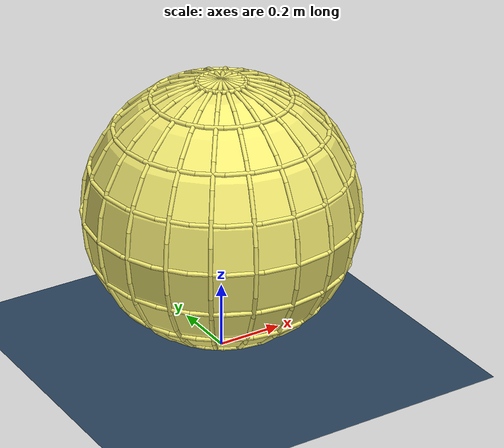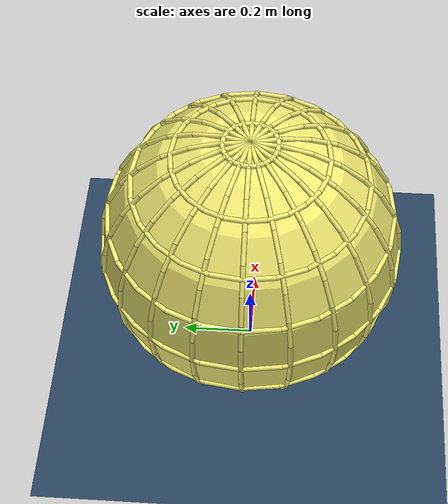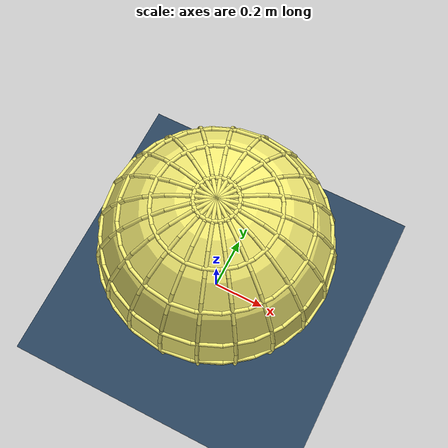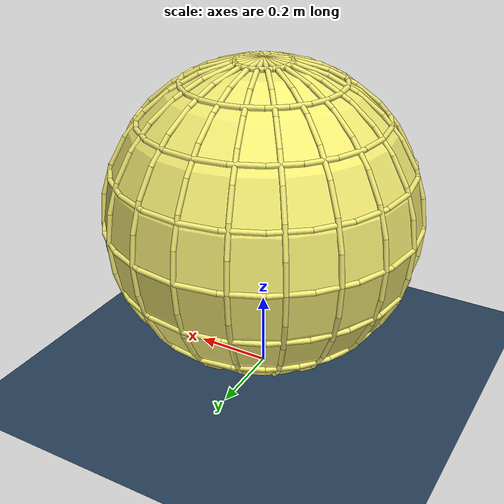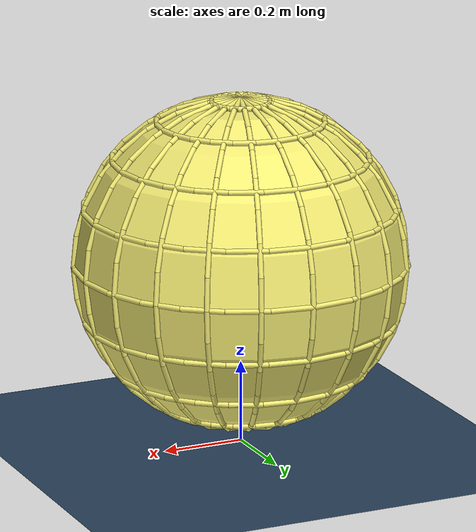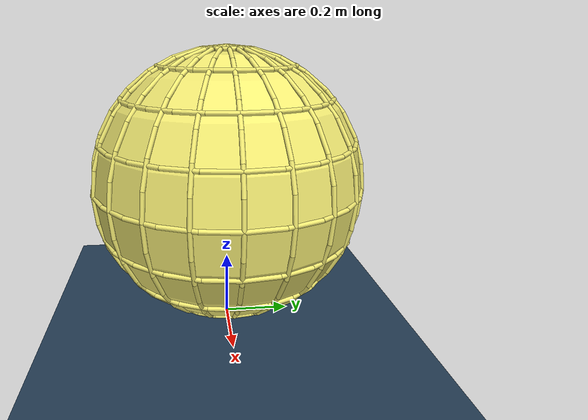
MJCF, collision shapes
<mujoco model="Skydio X2 ribbed cage scene">
  <include file="x2.xml"/>

  <statistic center="0 0 0.1" extent="0.6" meansize=".05"/>

  <visual>
    <headlight diffuse="0.8 0.8 0.8" ambient="0.3 0.3 0.3" specular="0 0 0"/>
    <rgba haze="0.15 0.25 0.35 1"/>
    <global azimuth="-20" elevation="-20" ellipsoidinertia="true"/>
  </visual>

  <asset>
    <texture type="skybox" builtin="gradient" rgb1="0.3 0.5 0.7" rgb2="0 0 0" width="512" height="3072"/>
    <texture type="2d" name="groundplane" builtin="checker" mark="edge" rgb1="0.2 0.3 0.4" rgb2="0.1 0.2 0.3"
      markrgb="0.8 0.8 0.8" width="300" height="300"/>
    <material name="groundplane" texture="groundplane" texuniform="true" texrepeat="5 5" reflectance="0.2"/>
  </asset>

  <worldbody>
    <light pos="0 0 1.5" dir="0 0 -1" directional="true"/>
    <geom name="floor" size="0 0 0.05" type="plane" material="groundplane"/>
  </worldbody>
</mujoco>

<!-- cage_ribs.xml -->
<mujoco>
  <body name="cage_ribs">
    <geom class="cage_rib" fromto="0.00000 0.00000 0.40000   0.07804 0.00000 0.39231" />
    <geom class="cage_rib" fromto="0.07804 0.00000 0.39231   0.15307 0.00000 0.36955" />
    <geom class="cage_rib" fromto="0.15307 0.00000 0.36955   0.22223 0.00000 0.33259" />
    <geom class="cage_rib" fromto="0.22223 0.00000 0.33259   0.28284 0.00000 0.28284" />
    <geom class="cage_rib" fromto="0.28284 0.00000 0.28284   0.33259 0.00000 0.22223" />
    <geom class="cage_rib" fromto="0.33259 0.00000 0.22223   0.36955 0.00000 0.15307" />
    <geom class="cage_rib" fromto="0.36955 0.00000 0.15307   0.39231 0.00000 0.07804" />
    <geom class="cage_rib" fromto="0.39231 0.00000 0.07804   0.40000 0.00000 0.00000" />
    <geom class="cage_rib" fromto="0.40000 0.00000 0.00000   0.39231 0.00000 -0.07804" />
    <geom class="cage_rib" fromto="0.39231 0.00000 -0.07804   0.36955 0.00000 -0.15307" />
    <geom class="cage_rib" fromto="0.36955 0.00000 -0.15307   0.33259 0.00000 -0.22223" />
    <geom class="cage_rib" fromto="0.33259 0.00000 -0.22223   0.28284 0.00000 -0.28284" />
    <geom class="cage_rib" fromto="0.28284 0.00000 -0.28284   0.22223 0.00000 -0.33259" />
    <geom class="cage_rib" fromto="0.22223 0.00000 -0.33259   0.15307 0.00000 -0.36955" />
    <geom class="cage_rib" fromto="0.15307 0.00000 -0.36955   0.07804 0.00000 -0.39231" />
    <geom class="cage_rib" fromto="0.07804 0.00000 -0.39231   0.00000 0.00000 -0.40000" />
    <geom class="cage_rib" fromto="0.00000 0.00000 -0.40000   -0.07804 -0.00000 -0.39231" />
    <geom class="cage_rib" fromto="-0.07804 -0.00000 -0.39231   -0.15307 -0.00000 -0.36955" />
    <geom class="cage_rib" fromto="-0.15307 -0.00000 -0.36955   -0.22223 -0.00000 -0.33259" />
    <geom class="cage_rib" fromto="-0.22223 -0.00000 -0.33259   -0.28284 -0.00000 -0.28284" />
    <geom class="cage_rib" fromto="-0.28284 -0.00000 -0.28284   -0.33259 -0.00000 -0.22223" />
    <geom class="cage_rib" fromto="-0.33259 -0.00000 -0.22223   -0.36955 -0.00000 -0.15307" />
    <geom class="cage_rib" fromto="-0.36955 -0.00000 -0.15307   -0.39231 -0.00000 -0.07804" />
    <geom class="cage_rib" fromto="-0.39231 -0.00000 -0.07804   -0.40000 -0.00000 -0.00000" />
    <geom class="cage_rib" fromto="-0.40000 -0.00000 -0.00000   -0.39231 -0.00000 0.07804" />
    <geom class="cage_rib" fromto="-0.39231 -0.00000 0.07804   -0.36955 -0.00000 0.15307" />
    <geom class="cage_rib" fromto="-0.36955 -0.00000 0.15307   -0.33259 -0.00000 0.22223" />
    <geom class="cage_rib" fromto="-0.33259 -0.00000 0.22223   -0.28284 -0.00000 0.28284" />
    <geom class="cage_rib" fromto="-0.28284 -0.00000 0.28284   -0.22223 -0.00000 0.33259" />
    <geom class="cage_rib" fromto="-0.22223 -0.00000 0.33259   -0.15307 -0.00000 0.36955" />
    <geom class="cage_rib" fromto="-0.15307 -0.00000 0.36955   -0.07804 -0.00000 0.39231" />
    <geom class="cage_rib" fromto="-0.07804 -0.00000 0.39231   0.00000 0.00000 0.40000" />
    <geom class="cage_rib" fromto="0.00000 0.00000 0.40000   0.07422 0.02411 0.39231" />
    <geom class="cage_rib" fromto="0.07422 0.02411 0.39231   0.14558 0.04730 0.36955" />
    <geom class="cage_rib" fromto="0.14558 0.04730 0.36955   0.21135 0.06867 0.33259" />
    <geom class="cage_rib" fromto="0.21135 0.06867 0.33259   0.26900 0.08740 0.28284" />
    <geom class="cage_rib" fromto="0.26900 0.08740 0.28284   0.31631 0.10278 0.22223" />
    <geom class="cage_rib" fromto="0.31631 0.10278 0.22223   0.35146 0.11420 0.15307" />
    <geom class="cage_rib" fromto="0.35146 0.11420 0.15307   0.37311 0.12123 0.07804" />
    <geom class="cage_rib" fromto="0.37311 0.12123 0.07804   0.38042 0.12361 0.00000" />
    <geom class="cage_rib" fromto="0.38042 0.12361 0.00000   0.37311 0.12123 -0.07804" />
    <geom class="cage_rib" fromto="0.37311 0.12123 -0.07804   0.35146 0.11420 -0.15307" />
    <geom class="cage_rib" fromto="0.35146 0.11420 -0.15307   0.31631 0.10278 -0.22223" />
    <geom class="cage_rib" fromto="0.31631 0.10278 -0.22223   0.26900 0.08740 -0.28284" />
    <geom class="cage_rib" fromto="0.26900 0.08740 -0.28284   0.21135 0.06867 -0.33259" />
    <geom class="cage_rib" fromto="0.21135 0.06867 -0.33259   0.14558 0.04730 -0.36955" />
    <geom class="cage_rib" fromto="0.14558 0.04730 -0.36955   0.07422 0.02411 -0.39231" />
    <geom class="cage_rib" fromto="0.07422 0.02411 -0.39231   0.00000 0.00000 -0.40000" />
    <geom class="cage_rib" fromto="0.00000 0.00000 -0.40000   -0.07422 -0.02411 -0.39231" />
    <geom class="cage_rib" fromto="-0.07422 -0.02411 -0.39231   -0.14558 -0.04730 -0.36955" />
    <geom class="cage_rib" fromto="-0.14558 -0.04730 -0.36955   -0.21135 -0.06867 -0.33259" />
    <geom class="cage_rib" fromto="-0.21135 -0.06867 -0.33259   -0.26900 -0.08740 -0.28284" />
    <geom class="cage_rib" fromto="-0.26900 -0.08740 -0.28284   -0.31631 -0.10278 -0.22223" />
    <geom class="cage_rib" fromto="-0.31631 -0.10278 -0.22223   -0.35146 -0.11420 -0.15307" />
    <geom class="cage_rib" fromto="-0.35146 -0.11420 -0.15307   -0.37311 -0.12123 -0.07804" />
    <geom class="cage_rib" fromto="-0.37311 -0.12123 -0.07804   -0.38042 -0.12361 -0.00000" />
    <geom class="cage_rib" fromto="-0.38042 -0.12361 -0.00000   -0.37311 -0.12123 0.07804" />
    <geom class="cage_rib" fromto="-0.37311 -0.12123 0.07804   -0.35146 -0.11420 0.15307" />
    <geom class="cage_rib" fromto="-0.35146 -0.11420 0.15307   -0.31631 -0.10278 0.22223" />
    <geom class="cage_rib" fromto="-0.31631 -0.10278 0.22223   -0.26900 -0.08740 0.28284" />
    <geom class="cage_rib" fromto="-0.26900 -0.08740 0.28284   -0.21135 -0.06867 0.33259" />
    <geom class="cage_rib" fromto="-0.21135 -0.06867 0.33259   -0.14558 -0.04730 0.36955" />
    <geom class="cage_rib" fromto="-0.14558 -0.04730 0.36955   -0.07422 -0.02411 0.39231" />
    <geom class="cage_rib" fromto="-0.07422 -0.02411 0.39231   0.00000 0.00000 0.40000" />
    <geom class="cage_rib" fromto="0.00000 0.00000 0.40000   0.06313 0.04587 0.39231" />
    <geom class="cage_rib" fromto="0.06313 0.04587 0.39231   0.12384 0.08997 0.36955" />
    <geom class="cage_rib" fromto="0.12384 0.08997 0.36955   0.17979 0.13062 0.33259" />
    <geom class="cage_rib" fromto="0.17979 0.13062 0.33259   0.22882 0.16625 0.28284" />
    <geom class="cage_rib" fromto="0.22882 0.16625 0.28284   0.26907 0.19549 0.22223" />
    <geom class="cage_rib" fromto="0.26907 0.19549 0.22223   0.29897 0.21722 0.15307" />
    <geom class="cage_rib" fromto="0.29897 0.21722 0.15307   0.31739 0.23060 0.07804" />
    <geom class="cage_rib" fromto="0.31739 0.23060 0.07804   0.32361 0.23511 0.00000" />
    <geom class="cage_rib" fromto="0.32361 0.23511 0.00000   0.31739 0.23060 -0.07804" />
    <geom class="cage_rib" fromto="0.31739 0.23060 -0.07804   0.29897 0.21722 -0.15307" />
    <geom class="cage_rib" fromto="0.29897 0.21722 -0.15307   0.26907 0.19549 -0.22223" />
    <geom class="cage_rib" fromto="0.26907 0.19549 -0.22223   0.22882 0.16625 -0.28284" />
    <geom class="cage_rib" fromto="0.22882 0.16625 -0.28284   0.17979 0.13062 -0.33259" />
    <geom class="cage_rib" fromto="0.17979 0.13062 -0.33259   0.12384 0.08997 -0.36955" />
    <geom class="cage_rib" fromto="0.12384 0.08997 -0.36955   0.06313 0.04587 -0.39231" />
    <geom class="cage_rib" fromto="0.06313 0.04587 -0.39231   0.00000 0.00000 -0.40000" />
    <geom class="cage_rib" fromto="0.00000 0.00000 -0.40000   -0.06313 -0.04587 -0.39231" />
    <geom class="cage_rib" fromto="-0.06313 -0.04587 -0.39231   -0.12384 -0.08997 -0.36955" />
    <geom class="cage_rib" fromto="-0.12384 -0.08997 -0.36955   -0.17979 -0.13062 -0.33259" />
    <geom class="cage_rib" fromto="-0.17979 -0.13062 -0.33259   -0.22882 -0.16625 -0.28284" />
    <geom class="cage_rib" fromto="-0.22882 -0.16625 -0.28284   -0.26907 -0.19549 -0.22223" />
    <geom class="cage_rib" fromto="-0.26907 -0.19549 -0.22223   -0.29897 -0.21722 -0.15307" />
    <geom class="cage_rib" fromto="-0.29897 -0.21722 -0.15307   -0.31739 -0.23060 -0.07804" />
    <geom class="cage_rib" fromto="-0.31739 -0.23060 -0.07804   -0.32361 -0.23511 -0.00000" />
    <geom class="cage_rib" fromto="-0.32361 -0.23511 -0.00000   -0.31739 -0.23060 0.07804" />
    <geom class="cage_rib" fromto="-0.31739 -0.23060 0.07804   -0.29897 -0.21722 0.15307" />
    <geom class="cage_rib" fromto="-0.29897 -0.21722 0.15307   -0.26907 -0.19549 0.22223" />
    <geom class="cage_rib" fromto="-0.26907 -0.19549 0.22223   -0.22882 -0.16625 0.28284" />
    <geom class="cage_rib" fromto="-0.22882 -0.16625 0.28284   -0.17979 -0.13062 0.33259" />
    <geom class="cage_rib" fromto="-0.17979 -0.13062 0.33259   -0.12384 -0.08997 0.36955" />
    <geom class="cage_rib" fromto="-0.12384 -0.08997 0.36955   -0.06313 -0.04587 0.39231" />
    <geom class="cage_rib" fromto="-0.06313 -0.04587 0.39231   0.00000 0.00000 0.40000" />
    <geom class="cage_rib" fromto="0.00000 0.00000 0.40000   0.04587 0.06313 0.39231" />
    <geom class="cage_rib" fromto="0.04587 0.06313 0.39231   0.08997 0.12384 0.36955" />
    <geom class="cage_rib" fromto="0.08997 0.12384 0.36955   0.13062 0.17979 0.33259" />
    <geom class="cage_rib" fromto="0.13062 0.17979 0.33259   0.16625 0.22882 0.28284" />
    <geom class="cage_rib" fromto="0.16625 0.22882 0.28284   0.19549 0.26907 0.22223" />
    <geom class="cage_rib" fromto="0.19549 0.26907 0.22223   0.21722 0.29897 0.15307" />
    <geom class="cage_rib" fromto="0.21722 0.29897 0.15307   0.23060 0.31739 0.07804" />
    <geom class="cage_rib" fromto="0.23060 0.31739 0.07804   0.23511 0.32361 0.00000" />
    <geom class="cage_rib" fromto="0.23511 0.32361 0.00000   0.23060 0.31739 -0.07804" />
    <geom class="cage_rib" fromto="0.23060 0.31739 -0.07804   0.21722 0.29897 -0.15307" />
    <geom class="cage_rib" fromto="0.21722 0.29897 -0.15307   0.19549 0.26907 -0.22223" />
    <geom class="cage_rib" fromto="0.19549 0.26907 -0.22223   0.16625 0.22882 -0.28284" />
    <geom class="cage_rib" fromto="0.16625 0.22882 -0.28284   0.13062 0.17979 -0.33259" />
    <geom class="cage_rib" fromto="0.13062 0.17979 -0.33259   0.08997 0.12384 -0.36955" />
    <geom class="cage_rib" fromto="0.08997 0.12384 -0.36955   0.04587 0.06313 -0.39231" />
    <geom class="cage_rib" fromto="0.04587 0.06313 -0.39231   0.00000 0.00000 -0.40000" />
    <geom class="cage_rib" fromto="0.00000 0.00000 -0.40000   -0.04587 -0.06313 -0.39231" />
    <geom class="cage_rib" fromto="-0.04587 -0.06313 -0.39231   -0.08997 -0.12384 -0.36955" />
    <geom class="cage_rib" fromto="-0.08997 -0.12384 -0.36955   -0.13062 -0.17979 -0.33259" />
    <geom class="cage_rib" fromto="-0.13062 -0.17979 -0.33259   -0.16625 -0.22882 -0.28284" />
    <geom class="cage_rib" fromto="-0.16625 -0.22882 -0.28284   -0.19549 -0.26907 -0.22223" />
    <geom class="cage_rib" fromto="-0.19549 -0.26907 -0.22223   -0.21722 -0.29897 -0.15307" />
    <geom class="cage_rib" fromto="-0.21722 -0.29897 -0.15307   -0.23060 -0.31739 -0.07804" />
    <geom class="cage_rib" fromto="-0.23060 -0.31739 -0.07804   -0.23511 -0.32361 -0.00000" />
    <geom class="cage_rib" fromto="-0.23511 -0.32361 -0.00000   -0.23060 -0.31739 0.07804" />
    <geom class="cage_rib" fromto="-0.23060 -0.31739 0.07804   -0.21722 -0.29897 0.15307" />
    <geom class="cage_rib" fromto="-0.21722 -0.29897 0.15307   -0.19549 -0.26907 0.22223" />
    <geom class="cage_rib" fromto="-0.19549 -0.26907 0.22223   -0.16625 -0.22882 0.28284" />
    <geom class="cage_rib" fromto="-0.16625 -0.22882 0.28284   -0.13062 -0.17979 0.33259" />
    <geom class="cage_rib" fromto="-0.13062 -0.17979 0.33259   -0.08997 -0.12384 0.36955" />
    <geom class="cage_rib" fromto="-0.08997 -0.12384 0.36955   -0.04587 -0.06313 0.39231" />
    <geom class="cage_rib" fromto="-0.04587 -0.06313 0.39231   0.00000 0.00000 0.40000" />
    <geom class="cage_rib" fromto="0.00000 0.00000 0.40000   0.02411 0.07422 0.39231" />
    <geom class="cage_rib" fromto="0.02411 0.07422 0.39231   0.04730 0.14558 0.36955" />
    <geom class="cage_rib" fromto="0.04730 0.14558 0.36955   0.06867 0.21135 0.33259" />
    <geom class="cage_rib" fromto="0.06867 0.21135 0.33259   0.08740 0.26900 0.28284" />
    <geom class="cage_rib" fromto="0.08740 0.26900 0.28284   0.10278 0.31631 0.22223" />
    <geom class="cage_rib" fromto="0.10278 0.31631 0.22223   0.11420 0.35146 0.15307" />
    <geom class="cage_rib" fromto="0.11420 0.35146 0.15307   0.12123 0.37311 0.07804" />
    <geom class="cage_rib" fromto="0.12123 0.37311 0.07804   0.12361 0.38042 0.00000" />
    <geom class="cage_rib" fromto="0.12361 0.38042 0.00000   0.12123 0.37311 -0.07804" />
    <geom class="cage_rib" fromto="0.12123 0.37311 -0.07804   0.11420 0.35146 -0.15307" />
    <geom class="cage_rib" fromto="0.11420 0.35146 -0.15307   0.10278 0.31631 -0.22223" />
    <geom class="cage_rib" fromto="0.10278 0.31631 -0.22223   0.08740 0.26900 -0.28284" />
    <geom class="cage_rib" fromto="0.08740 0.26900 -0.28284   0.06867 0.21135 -0.33259" />
    <geom class="cage_rib" fromto="0.06867 0.21135 -0.33259   0.04730 0.14558 -0.36955" />
    <geom class="cage_rib" fromto="0.04730 0.14558 -0.36955   0.02411 0.07422 -0.39231" />
    <geom class="cage_rib" fromto="0.02411 0.07422 -0.39231   0.00000 0.00000 -0.40000" />
    <geom class="cage_rib" fromto="0.00000 0.00000 -0.40000   -0.02411 -0.07422 -0.39231" />
    <geom class="cage_rib" fromto="-0.02411 -0.07422 -0.39231   -0.04730 -0.14558 -0.36955" />
    <geom class="cage_rib" fromto="-0.04730 -0.14558 -0.36955   -0.06867 -0.21135 -0.33259" />
    <geom class="cage_rib" fromto="-0.06867 -0.21135 -0.33259   -0.08740 -0.26900 -0.28284" />
    <geom class="cage_rib" fromto="-0.08740 -0.26900 -0.28284   -0.10278 -0.31631 -0.22223" />
    <geom class="cage_rib" fromto="-0.10278 -0.31631 -0.22223   -0.11420 -0.35146 -0.15307" />
    <geom class="cage_rib" fromto="-0.11420 -0.35146 -0.15307   -0.12123 -0.37311 -0.07804" />
    <geom class="cage_rib" fromto="-0.12123 -0.37311 -0.07804   -0.12361 -0.38042 -0.00000" />
    <geom class="cage_rib" fromto="-0.12361 -0.38042 -0.00000   -0.12123 -0.37311 0.07804" />
    <geom class="cage_rib" fromto="-0.12123 -0.37311 0.07804   -0.11420 -0.35146 0.15307" />
    <geom class="cage_rib" fromto="-0.11420 -0.35146 0.15307   -0.10278 -0.31631 0.22223" />
    <geom class="cage_rib" fromto="-0.10278 -0.31631 0.22223   -0.08740 -0.26900 0.28284" />
    <geom class="cage_rib" fromto="-0.08740 -0.26900 0.28284   -0.06867 -0.21135 0.33259" />
    <geom class="cage_rib" fromto="-0.06867 -0.21135 0.33259   -0.04730 -0.14558 0.36955" />
    <geom class="cage_rib" fromto="-0.04730 -0.14558 0.36955   -0.02411 -0.07422 0.39231" />
    <geom class="cage_rib" fromto="-0.02411 -0.07422 0.39231   0.00000 0.00000 0.40000" />
    <geom class="cage_rib" fromto="0.00000 0.00000 0.40000   0.00000 0.07804 0.39231" />
    <geom class="cage_rib" fromto="0.00000 0.07804 0.39231   0.00000 0.15307 0.36955" />
    <geom class="cage_rib" fromto="0.00000 0.15307 0.36955   0.00000 0.22223 0.33259" />
    <geom class="cage_rib" fromto="0.00000 0.22223 0.33259   0.00000 0.28284 0.28284" />
    <geom class="cage_rib" fromto="0.00000 0.28284 0.28284   0.00000 0.33259 0.22223" />
    <geom class="cage_rib" fromto="0.00000 0.33259 0.22223   0.00000 0.36955 0.15307" />
    <geom class="cage_rib" fromto="0.00000 0.36955 0.15307   0.00000 0.39231 0.07804" />
    <geom class="cage_rib" fromto="0.00000 0.39231 0.07804   0.00000 0.40000 0.00000" />
    <geom class="cage_rib" fromto="0.00000 0.40000 0.00000   0.00000 0.39231 -0.07804" />
    <geom class="cage_rib" fromto="0.00000 0.39231 -0.07804   0.00000 0.36955 -0.15307" />
    <geom class="cage_rib" fromto="0.00000 0.36955 -0.15307   0.00000 0.33259 -0.22223" />
    <geom class="cage_rib" fromto="0.00000 0.33259 -0.22223   0.00000 0.28284 -0.28284" />
    <geom class="cage_rib" fromto="0.00000 0.28284 -0.28284   0.00000 0.22223 -0.33259" />
    <geom class="cage_rib" fromto="0.00000 0.22223 -0.33259   0.00000 0.15307 -0.36955" />
    <geom class="cage_rib" fromto="0.00000 0.15307 -0.36955   0.00000 0.07804 -0.39231" />
    <geom class="cage_rib" fromto="0.00000 0.07804 -0.39231   0.00000 0.00000 -0.40000" />
    <geom class="cage_rib" fromto="0.00000 0.00000 -0.40000   -0.00000 -0.07804 -0.39231" />
    <geom class="cage_rib" fromto="-0.00000 -0.07804 -0.39231   -0.00000 -0.15307 -0.36955" />
    <geom class="cage_rib" fromto="-0.00000 -0.15307 -0.36955   -0.00000 -0.22223 -0.33259" />
    <geom class="cage_rib" fromto="-0.00000 -0.22223 -0.33259   -0.00000 -0.28284 -0.28284" />
    <geom class="cage_rib" fromto="-0.00000 -0.28284 -0.28284   -0.00000 -0.33259 -0.22223" />
    <geom class="cage_rib" fromto="-0.00000 -0.33259 -0.22223   -0.00000 -0.36955 -0.15307" />
    <geom class="cage_rib" fromto="-0.00000 -0.36955 -0.15307   -0.00000 -0.39231 -0.07804" />
    <geom class="cage_rib" fromto="-0.00000 -0.39231 -0.07804   -0.00000 -0.40000 -0.00000" />
    <geom class="cage_rib" fromto="-0.00000 -0.40000 -0.00000   -0.00000 -0.39231 0.07804" />
    <geom class="cage_rib" fromto="-0.00000 -0.39231 0.07804   -0.00000 -0.36955 0.15307" />
    <geom class="cage_rib" fromto="-0.00000 -0.36955 0.15307   -0.00000 -0.33259 0.22223" />
    <geom class="cage_rib" fromto="-0.00000 -0.33259 0.22223   -0.00000 -0.28284 0.28284" />
    <geom class="cage_rib" fromto="-0.00000 -0.28284 0.28284   -0.00000 -0.22223 0.33259" />
    <geom class="cage_rib" fromto="-0.00000 -0.22223 0.33259   -0.00000 -0.15307 0.36955" />
    <geom class="cage_rib" fromto="-0.00000 -0.15307 0.36955   -0.00000 -0.07804 0.39231" />
    <geom class="cage_rib" fromto="-0.00000 -0.07804 0.39231   0.00000 0.00000 0.40000" />
    <geom class="cage_rib" fromto="-0.00000 0.00000 0.40000   -0.02411 0.07422 0.39231" />
    <geom class="cage_rib" fromto="-0.02411 0.07422 0.39231   -0.04730 0.14558 0.36955" />
    <geom class="cage_rib" fromto="-0.04730 0.14558 0.36955   -0.06867 0.21135 0.33259" />
    <geom class="cage_rib" fromto="-0.06867 0.21135 0.33259   -0.08740 0.26900 0.28284" />
    <geom class="cage_rib" fromto="-0.08740 0.26900 0.28284   -0.10278 0.31631 0.22223" />
    <geom class="cage_rib" fromto="-0.10278 0.31631 0.22223   -0.11420 0.35146 0.15307" />
    <geom class="cage_rib" fromto="-0.11420 0.35146 0.15307   -0.12123 0.37311 0.07804" />
    <geom class="cage_rib" fromto="-0.12123 0.37311 0.07804   -0.12361 0.38042 0.00000" />
    <geom class="cage_rib" fromto="-0.12361 0.38042 0.00000   -0.12123 0.37311 -0.07804" />
    <geom class="cage_rib" fromto="-0.12123 0.37311 -0.07804   -0.11420 0.35146 -0.15307" />
    <geom class="cage_rib" fromto="-0.11420 0.35146 -0.15307   -0.10278 0.31631 -0.22223" />
    <geom class="cage_rib" fromto="-0.10278 0.31631 -0.22223   -0.08740 0.26900 -0.28284" />
    <geom class="cage_rib" fromto="-0.08740 0.26900 -0.28284   -0.06867 0.21135 -0.33259" />
    <geom class="cage_rib" fromto="-0.06867 0.21135 -0.33259   -0.04730 0.14558 -0.36955" />
    <geom class="cage_rib" fromto="-0.04730 0.14558 -0.36955   -0.02411 0.07422 -0.39231" />
    <geom class="cage_rib" fromto="-0.02411 0.07422 -0.39231   -0.00000 0.00000 -0.40000" />
    <geom class="cage_rib" fromto="-0.00000 0.00000 -0.40000   0.02411 -0.07422 -0.39231" />
    <geom class="cage_rib" fromto="0.02411 -0.07422 -0.39231   0.04730 -0.14558 -0.36955" />
    <geom class="cage_rib" fromto="0.04730 -0.14558 -0.36955   0.06867 -0.21135 -0.33259" />
    <geom class="cage_rib" fromto="0.06867 -0.21135 -0.33259   0.08740 -0.26900 -0.28284" />
    <geom class="cage_rib" fromto="0.08740 -0.26900 -0.28284   0.10278 -0.31631 -0.22223" />
    <geom class="cage_rib" fromto="0.10278 -0.31631 -0.22223   0.11420 -0.35146 -0.15307" />
    <geom class="cage_rib" fromto="0.11420 -0.35146 -0.15307   0.12123 -0.37311 -0.07804" />
    <geom class="cage_rib" fromto="0.12123 -0.37311 -0.07804   0.12361 -0.38042 -0.00000" />
    <geom class="cage_rib" fromto="0.12361 -0.38042 -0.00000   0.12123 -0.37311 0.07804" />
    <geom class="cage_rib" fromto="0.12123 -0.37311 0.07804   0.11420 -0.35146 0.15307" />
    <geom class="cage_rib" fromto="0.11420 -0.35146 0.15307   0.10278 -0.31631 0.22223" />
    <geom class="cage_rib" fromto="0.10278 -0.31631 0.22223   0.08740 -0.26900 0.28284" />
    <geom class="cage_rib" fromto="0.08740 -0.26900 0.28284   0.06867 -0.21135 0.33259" />
    <geom class="cage_rib" fromto="0.06867 -0.21135 0.33259   0.04730 -0.14558 0.36955" />
    <geom class="cage_rib" fromto="0.04730 -0.14558 0.36955   0.02411 -0.07422 0.39231" />
    <geom class="cage_rib" fromto="0.02411 -0.07422 0.39231   -0.00000 0.00000 0.40000" />
    <geom class="cage_rib" fromto="-0.00000 0.00000 0.40000   -0.04587 0.06313 0.39231" />
    <geom class="cage_rib" fromto="-0.04587 0.06313 0.39231   -0.08997 0.12384 0.36955" />
    <geom class="cage_rib" fromto="-0.08997 0.12384 0.36955   -0.13062 0.17979 0.33259" />
    <geom class="cage_rib" fromto="-0.13062 0.17979 0.33259   -0.16625 0.22882 0.28284" />
    <geom class="cage_rib" fromto="-0.16625 0.22882 0.28284   -0.19549 0.26907 0.22223" />
    <geom class="cage_rib" fromto="-0.19549 0.26907 0.22223   -0.21722 0.29897 0.15307" />
    <geom class="cage_rib" fromto="-0.21722 0.29897 0.15307   -0.23060 0.31739 0.07804" />
    <geom class="cage_rib" fromto="-0.23060 0.31739 0.07804   -0.23511 0.32361 0.00000" />
    <geom class="cage_rib" fromto="-0.23511 0.32361 0.00000   -0.23060 0.31739 -0.07804" />
    <geom class="cage_rib" fromto="-0.23060 0.31739 -0.07804   -0.21722 0.29897 -0.15307" />
    <geom class="cage_rib" fromto="-0.21722 0.29897 -0.15307   -0.19549 0.26907 -0.22223" />
    <geom class="cage_rib" fromto="-0.19549 0.26907 -0.22223   -0.16625 0.22882 -0.28284" />
    <geom class="cage_rib" fromto="-0.16625 0.22882 -0.28284   -0.13062 0.17979 -0.33259" />
    <geom class="cage_rib" fromto="-0.13062 0.17979 -0.33259   -0.08997 0.12384 -0.36955" />
    <geom class="cage_rib" fromto="-0.08997 0.12384 -0.36955   -0.04587 0.06313 -0.39231" />
    <geom class="cage_rib" fromto="-0.04587 0.06313 -0.39231   -0.00000 0.00000 -0.40000" />
    <geom class="cage_rib" fromto="-0.00000 0.00000 -0.40000   0.04587 -0.06313 -0.39231" />
    <geom class="cage_rib" fromto="0.04587 -0.06313 -0.39231   0.08997 -0.12384 -0.36955" />
    <geom class="cage_rib" fromto="0.08997 -0.12384 -0.36955   0.13062 -0.17979 -0.33259" />
    <geom class="cage_rib" fromto="0.13062 -0.17979 -0.33259   0.16625 -0.22882 -0.28284" />
    <geom class="cage_rib" fromto="0.16625 -0.22882 -0.28284   0.19549 -0.26907 -0.22223" />
    <geom class="cage_rib" fromto="0.19549 -0.26907 -0.22223   0.21722 -0.29897 -0.15307" />
    <geom class="cage_rib" fromto="0.21722 -0.29897 -0.15307   0.23060 -0.31739 -0.07804" />
    <geom class="cage_rib" fromto="0.23060 -0.31739 -0.07804   0.23511 -0.32361 -0.00000" />
    <geom class="cage_rib" fromto="0.23511 -0.32361 -0.00000   0.23060 -0.31739 0.07804" />
    <geom class="cage_rib" fromto="0.23060 -0.31739 0.07804   0.21722 -0.29897 0.15307" />
    <geom class="cage_rib" fromto="0.21722 -0.29897 0.15307   0.19549 -0.26907 0.22223" />
    <geom class="cage_rib" fromto="0.19549 -0.26907 0.22223   0.16625 -0.22882 0.28284" />
    <geom class="cage_rib" fromto="0.16625 -0.22882 0.28284   0.13062 -0.17979 0.33259" />
    <geom class="cage_rib" fromto="0.13062 -0.17979 0.33259   0.08997 -0.12384 0.36955" />
    <geom class="cage_rib" fromto="0.08997 -0.12384 0.36955   0.04587 -0.06313 0.39231" />
    <geom class="cage_rib" fromto="0.04587 -0.06313 0.39231   -0.00000 0.00000 0.40000" />
    <geom class="cage_rib" fromto="-0.00000 0.00000 0.40000   -0.06313 0.04587 0.39231" />
    <geom class="cage_rib" fromto="-0.06313 0.04587 0.39231   -0.12384 0.08997 0.36955" />
    <geom class="cage_rib" fromto="-0.12384 0.08997 0.36955   -0.17979 0.13062 0.33259" />
    <geom class="cage_rib" fromto="-0.17979 0.13062 0.33259   -0.22882 0.16625 0.28284" />
    <geom class="cage_rib" fromto="-0.22882 0.16625 0.28284   -0.26907 0.19549 0.22223" />
    <geom class="cage_rib" fromto="-0.26907 0.19549 0.22223   -0.29897 0.21722 0.15307" />
    <geom class="cage_rib" fromto="-0.29897 0.21722 0.15307   -0.31739 0.23060 0.07804" />
    <geom class="cage_rib" fromto="-0.31739 0.23060 0.07804   -0.32361 0.23511 0.00000" />
    <geom class="cage_rib" fromto="-0.32361 0.23511 0.00000   -0.31739 0.23060 -0.07804" />
    <geom class="cage_rib" fromto="-0.31739 0.23060 -0.07804   -0.29897 0.21722 -0.15307" />
    <geom class="cage_rib" fromto="-0.29897 0.21722 -0.15307   -0.26907 0.19549 -0.22223" />
    <geom class="cage_rib" fromto="-0.26907 0.19549 -0.22223   -0.22882 0.16625 -0.28284" />
    <geom class="cage_rib" fromto="-0.22882 0.16625 -0.28284   -0.17979 0.13062 -0.33259" />
    <geom class="cage_rib" fromto="-0.17979 0.13062 -0.33259   -0.12384 0.08997 -0.36955" />
    <geom class="cage_rib" fromto="-0.12384 0.08997 -0.36955   -0.06313 0.04587 -0.39231" />
    <geom class="cage_rib" fromto="-0.06313 0.04587 -0.39231   -0.00000 0.00000 -0.40000" />
    <geom class="cage_rib" fromto="-0.00000 0.00000 -0.40000   0.06313 -0.04587 -0.39231" />
    <geom class="cage_rib" fromto="0.06313 -0.04587 -0.39231   0.12384 -0.08997 -0.36955" />
    <geom class="cage_rib" fromto="0.12384 -0.08997 -0.36955   0.17979 -0.13062 -0.33259" />
    <geom class="cage_rib" fromto="0.17979 -0.13062 -0.33259   0.22882 -0.16625 -0.28284" />
    <geom class="cage_rib" fromto="0.22882 -0.16625 -0.28284   0.26907 -0.19549 -0.22223" />
    <geom class="cage_rib" fromto="0.26907 -0.19549 -0.22223   0.29897 -0.21722 -0.15307" />
    <geom class="cage_rib" fromto="0.29897 -0.21722 -0.15307   0.31739 -0.23060 -0.07804" />
    <geom class="cage_rib" fromto="0.31739 -0.23060 -0.07804   0.32361 -0.23511 -0.00000" />
    <geom class="cage_rib" fromto="0.32361 -0.23511 -0.00000   0.31739 -0.23060 0.07804" />
    <geom class="cage_rib" fromto="0.31739 -0.23060 0.07804   0.29897 -0.21722 0.15307" />
    <geom class="cage_rib" fromto="0.29897 -0.21722 0.15307   0.26907 -0.19549 0.22223" />
    <geom class="cage_rib" fromto="0.26907 -0.19549 0.22223   0.22882 -0.16625 0.28284" />
    <geom class="cage_rib" fromto="0.22882 -0.16625 0.28284   0.17979 -0.13062 0.33259" />
    <geom class="cage_rib" fromto="0.17979 -0.13062 0.33259   0.12384 -0.08997 0.36955" />
    <geom class="cage_rib" fromto="0.12384 -0.08997 0.36955   0.06313 -0.04587 0.39231" />
    <geom class="cage_rib" fromto="0.06313 -0.04587 0.39231   -0.00000 0.00000 0.40000" />
    <geom class="cage_rib" fromto="-0.00000 0.00000 0.40000   -0.07422 0.02411 0.39231" />
    <geom class="cage_rib" fromto="-0.07422 0.02411 0.39231   -0.14558 0.04730 0.36955" />
    <geom class="cage_rib" fromto="-0.14558 0.04730 0.36955   -0.21135 0.06867 0.33259" />
    <geom class="cage_rib" fromto="-0.21135 0.06867 0.33259   -0.26900 0.08740 0.28284" />
    <geom class="cage_rib" fromto="-0.26900 0.08740 0.28284   -0.31631 0.10278 0.22223" />
    <geom class="cage_rib" fromto="-0.31631 0.10278 0.22223   -0.35146 0.11420 0.15307" />
    <geom class="cage_rib" fromto="-0.35146 0.11420 0.15307   -0.37311 0.12123 0.07804" />
    <geom class="cage_rib" fromto="-0.37311 0.12123 0.07804   -0.38042 0.12361 0.00000" />
    <geom class="cage_rib" fromto="-0.38042 0.12361 0.00000   -0.37311 0.12123 -0.07804" />
    <geom class="cage_rib" fromto="-0.37311 0.12123 -0.07804   -0.35146 0.11420 -0.15307" />
    <geom class="cage_rib" fromto="-0.35146 0.11420 -0.15307   -0.31631 0.10278 -0.22223" />
    <geom class="cage_rib" fromto="-0.31631 0.10278 -0.22223   -0.26900 0.08740 -0.28284" />
    <geom class="cage_rib" fromto="-0.26900 0.08740 -0.28284   -0.21135 0.06867 -0.33259" />
    <geom class="cage_rib" fromto="-0.21135 0.06867 -0.33259   -0.14558 0.04730 -0.36955" />
    <geom class="cage_rib" fromto="-0.14558 0.04730 -0.36955   -0.07422 0.02411 -0.39231" />
    <geom class="cage_rib" fromto="-0.07422 0.02411 -0.39231   -0.00000 0.00000 -0.40000" />
    <geom class="cage_rib" fromto="-0.00000 0.00000 -0.40000   0.07422 -0.02411 -0.39231" />
    <geom class="cage_rib" fromto="0.07422 -0.02411 -0.39231   0.14558 -0.04730 -0.36955" />
    <geom class="cage_rib" fromto="0.14558 -0.04730 -0.36955   0.21135 -0.06867 -0.33259" />
    <geom class="cage_rib" fromto="0.21135 -0.06867 -0.33259   0.26900 -0.08740 -0.28284" />
    <geom class="cage_rib" fromto="0.26900 -0.08740 -0.28284   0.31631 -0.10278 -0.22223" />
    <geom class="cage_rib" fromto="0.31631 -0.10278 -0.22223   0.35146 -0.11420 -0.15307" />
    <geom class="cage_rib" fromto="0.35146 -0.11420 -0.15307   0.37311 -0.12123 -0.07804" />
    <geom class="cage_rib" fromto="0.37311 -0.12123 -0.07804   0.38042 -0.12361 -0.00000" />
    <geom class="cage_rib" fromto="0.38042 -0.12361 -0.00000   0.37311 -0.12123 0.07804" />
    <geom class="cage_rib" fromto="0.37311 -0.12123 0.07804   0.35146 -0.11420 0.15307" />
    <geom class="cage_rib" fromto="0.35146 -0.11420 0.15307   0.31631 -0.10278 0.22223" />
    <geom class="cage_rib" fromto="0.31631 -0.10278 0.22223   0.26900 -0.08740 0.28284" />
    <geom class="cage_rib" fromto="0.26900 -0.08740 0.28284   0.21135 -0.06867 0.33259" />
    <geom class="cage_rib" fromto="0.21135 -0.06867 0.33259   0.14558 -0.04730 0.36955" />
    <geom class="cage_rib" fromto="0.14558 -0.04730 0.36955   0.07422 -0.02411 0.39231" />
    <geom class="cage_rib" fromto="0.07422 -0.02411 0.39231   -0.00000 0.00000 0.40000" />
    <geom class="cage_rib" fromto="0.06946 0.00000 -0.39392   0.06709 0.01798 -0.39392" />
    <geom class="cage_rib" fromto="0.06709 0.01798 -0.39392   0.06015 0.03473 -0.39392" />
    <geom class="cage_rib" fromto="0.06015 0.03473 -0.39392   0.04912 0.04912 -0.39392" />
    <geom class="cage_rib" fromto="0.04912 0.04912 -0.39392   0.03473 0.06015 -0.39392" />
    <geom class="cage_rib" fromto="0.03473 0.06015 -0.39392   0.01798 0.06709 -0.39392" />
    <geom class="cage_rib" fromto="0.01798 0.06709 -0.39392   0.00000 0.06946 -0.39392" />
    <geom class="cage_rib" fromto="0.00000 0.06946 -0.39392   -0.01798 0.06709 -0.39392" />
    <geom class="cage_rib" fromto="-0.01798 0.06709 -0.39392   -0.03473 0.06015 -0.39392" />
    <geom class="cage_rib" fromto="-0.03473 0.06015 -0.39392   -0.04912 0.04912 -0.39392" />
    <geom class="cage_rib" fromto="-0.04912 0.04912 -0.39392   -0.06015 0.03473 -0.39392" />
    <geom class="cage_rib" fromto="-0.06015 0.03473 -0.39392   -0.06709 0.01798 -0.39392" />
    <geom class="cage_rib" fromto="-0.06709 0.01798 -0.39392   -0.06946 0.00000 -0.39392" />
    <geom class="cage_rib" fromto="-0.06946 0.00000 -0.39392   -0.06709 -0.01798 -0.39392" />
    <geom class="cage_rib" fromto="-0.06709 -0.01798 -0.39392   -0.06015 -0.03473 -0.39392" />
    <geom class="cage_rib" fromto="-0.06015 -0.03473 -0.39392   -0.04912 -0.04912 -0.39392" />
    <geom class="cage_rib" fromto="-0.04912 -0.04912 -0.39392   -0.03473 -0.06015 -0.39392" />
    <geom class="cage_rib" fromto="-0.03473 -0.06015 -0.39392   -0.01798 -0.06709 -0.39392" />
    <geom class="cage_rib" fromto="-0.01798 -0.06709 -0.39392   -0.00000 -0.06946 -0.39392" />
    <geom class="cage_rib" fromto="-0.00000 -0.06946 -0.39392   0.01798 -0.06709 -0.39392" />
    <geom class="cage_rib" fromto="0.01798 -0.06709 -0.39392   0.03473 -0.06015 -0.39392" />
    <geom class="cage_rib" fromto="0.03473 -0.06015 -0.39392   0.04912 -0.04912 -0.39392" />
    <geom class="cage_rib" fromto="0.04912 -0.04912 -0.39392   0.06015 -0.03473 -0.39392" />
    <geom class="cage_rib" fromto="0.06015 -0.03473 -0.39392   0.06709 -0.01798 -0.39392" />
    <geom class="cage_rib" fromto="0.06709 -0.01798 -0.39392   0.06946 0.00000 -0.39392" />
    <geom class="cage_rib" fromto="0.20000 0.00000 -0.34641   0.19319 0.05176 -0.34641" />
    <geom class="cage_rib" fromto="0.19319 0.05176 -0.34641   0.17321 0.10000 -0.34641" />
    <geom class="cage_rib" fromto="0.17321 0.10000 -0.34641   0.14142 0.14142 -0.34641" />
    <geom class="cage_rib" fromto="0.14142 0.14142 -0.34641   0.10000 0.17321 -0.34641" />
    <geom class="cage_rib" fromto="0.10000 0.17321 -0.34641   0.05176 0.19319 -0.34641" />
    <geom class="cage_rib" fromto="0.05176 0.19319 -0.34641   0.00000 0.20000 -0.34641" />
    <geom class="cage_rib" fromto="0.00000 0.20000 -0.34641   -0.05176 0.19319 -0.34641" />
    <geom class="cage_rib" fromto="-0.05176 0.19319 -0.34641   -0.10000 0.17321 -0.34641" />
    <geom class="cage_rib" fromto="-0.10000 0.17321 -0.34641   -0.14142 0.14142 -0.34641" />
    <geom class="cage_rib" fromto="-0.14142 0.14142 -0.34641   -0.17321 0.10000 -0.34641" />
    <geom class="cage_rib" fromto="-0.17321 0.10000 -0.34641   -0.19319 0.05176 -0.34641" />
    <geom class="cage_rib" fromto="-0.19319 0.05176 -0.34641   -0.20000 0.00000 -0.34641" />
    <geom class="cage_rib" fromto="-0.20000 0.00000 -0.34641   -0.19319 -0.05176 -0.34641" />
    <geom class="cage_rib" fromto="-0.19319 -0.05176 -0.34641   -0.17321 -0.10000 -0.34641" />
    <geom class="cage_rib" fromto="-0.17321 -0.10000 -0.34641   -0.14142 -0.14142 -0.34641" />
    <geom class="cage_rib" fromto="-0.14142 -0.14142 -0.34641   -0.10000 -0.17321 -0.34641" />
    <geom class="cage_rib" fromto="-0.10000 -0.17321 -0.34641   -0.05176 -0.19319 -0.34641" />
    <geom class="cage_rib" fromto="-0.05176 -0.19319 -0.34641   -0.00000 -0.20000 -0.34641" />
    <geom class="cage_rib" fromto="-0.00000 -0.20000 -0.34641   0.05176 -0.19319 -0.34641" />
    <geom class="cage_rib" fromto="0.05176 -0.19319 -0.34641   0.10000 -0.17321 -0.34641" />
    <geom class="cage_rib" fromto="0.10000 -0.17321 -0.34641   0.14142 -0.14142 -0.34641" />
    <geom class="cage_rib" fromto="0.14142 -0.14142 -0.34641   0.17321 -0.10000 -0.34641" />
    <geom class="cage_rib" fromto="0.17321 -0.10000 -0.34641   0.19319 -0.05176 -0.34641" />
    <geom class="cage_rib" fromto="0.19319 -0.05176 -0.34641   0.20000 0.00000 -0.34641" />
    <geom class="cage_rib" fromto="0.30642 0.00000 -0.25712   0.29598 0.07931 -0.25712" />
    <geom class="cage_rib" fromto="0.29598 0.07931 -0.25712   0.26537 0.15321 -0.25712" />
    <geom class="cage_rib" fromto="0.26537 0.15321 -0.25712   0.21667 0.21667 -0.25712" />
    <geom class="cage_rib" fromto="0.21667 0.21667 -0.25712   0.15321 0.26537 -0.25712" />
    <geom class="cage_rib" fromto="0.15321 0.26537 -0.25712   0.07931 0.29598 -0.25712" />
    <geom class="cage_rib" fromto="0.07931 0.29598 -0.25712   0.00000 0.30642 -0.25712" />
    <geom class="cage_rib" fromto="0.00000 0.30642 -0.25712   -0.07931 0.29598 -0.25712" />
    <geom class="cage_rib" fromto="-0.07931 0.29598 -0.25712   -0.15321 0.26537 -0.25712" />
    <geom class="cage_rib" fromto="-0.15321 0.26537 -0.25712   -0.21667 0.21667 -0.25712" />
    <geom class="cage_rib" fromto="-0.21667 0.21667 -0.25712   -0.26537 0.15321 -0.25712" />
    <geom class="cage_rib" fromto="-0.26537 0.15321 -0.25712   -0.29598 0.07931 -0.25712" />
    <geom class="cage_rib" fromto="-0.29598 0.07931 -0.25712   -0.30642 0.00000 -0.25712" />
    <geom class="cage_rib" fromto="-0.30642 0.00000 -0.25712   -0.29598 -0.07931 -0.25712" />
    <geom class="cage_rib" fromto="-0.29598 -0.07931 -0.25712   -0.26537 -0.15321 -0.25712" />
    <geom class="cage_rib" fromto="-0.26537 -0.15321 -0.25712   -0.21667 -0.21667 -0.25712" />
    <geom class="cage_rib" fromto="-0.21667 -0.21667 -0.25712   -0.15321 -0.26537 -0.25712" />
    <geom class="cage_rib" fromto="-0.15321 -0.26537 -0.25712   -0.07931 -0.29598 -0.25712" />
    <geom class="cage_rib" fromto="-0.07931 -0.29598 -0.25712   -0.00000 -0.30642 -0.25712" />
    <geom class="cage_rib" fromto="-0.00000 -0.30642 -0.25712   0.07931 -0.29598 -0.25712" />
    <geom class="cage_rib" fromto="0.07931 -0.29598 -0.25712   0.15321 -0.26537 -0.25712" />
    <geom class="cage_rib" fromto="0.15321 -0.26537 -0.25712   0.21667 -0.21667 -0.25712" />
    <geom class="cage_rib" fromto="0.21667 -0.21667 -0.25712   0.26537 -0.15321 -0.25712" />
    <geom class="cage_rib" fromto="0.26537 -0.15321 -0.25712   0.29598 -0.07931 -0.25712" />
    <geom class="cage_rib" fromto="0.29598 -0.07931 -0.25712   0.30642 0.00000 -0.25712" />
    <geom class="cage_rib" fromto="0.37588 0.00000 -0.13681   0.36307 0.09728 -0.13681" />
    <geom class="cage_rib" fromto="0.36307 0.09728 -0.13681   0.32552 0.18794 -0.13681" />
    <geom class="cage_rib" fromto="0.32552 0.18794 -0.13681   0.26579 0.26579 -0.13681" />
    <geom class="cage_rib" fromto="0.26579 0.26579 -0.13681   0.18794 0.32552 -0.13681" />
    <geom class="cage_rib" fromto="0.18794 0.32552 -0.13681   0.09728 0.36307 -0.13681" />
    <geom class="cage_rib" fromto="0.09728 0.36307 -0.13681   0.00000 0.37588 -0.13681" />
    <geom class="cage_rib" fromto="0.00000 0.37588 -0.13681   -0.09728 0.36307 -0.13681" />
    <geom class="cage_rib" fromto="-0.09728 0.36307 -0.13681   -0.18794 0.32552 -0.13681" />
    <geom class="cage_rib" fromto="-0.18794 0.32552 -0.13681   -0.26579 0.26579 -0.13681" />
    <geom class="cage_rib" fromto="-0.26579 0.26579 -0.13681   -0.32552 0.18794 -0.13681" />
    <geom class="cage_rib" fromto="-0.32552 0.18794 -0.13681   -0.36307 0.09728 -0.13681" />
    <geom class="cage_rib" fromto="-0.36307 0.09728 -0.13681   -0.37588 0.00000 -0.13681" />
    <geom class="cage_rib" fromto="-0.37588 0.00000 -0.13681   -0.36307 -0.09728 -0.13681" />
    <geom class="cage_rib" fromto="-0.36307 -0.09728 -0.13681   -0.32552 -0.18794 -0.13681" />
    <geom class="cage_rib" fromto="-0.32552 -0.18794 -0.13681   -0.26579 -0.26579 -0.13681" />
    <geom class="cage_rib" fromto="-0.26579 -0.26579 -0.13681   -0.18794 -0.32552 -0.13681" />
    <geom class="cage_rib" fromto="-0.18794 -0.32552 -0.13681   -0.09728 -0.36307 -0.13681" />
    <geom class="cage_rib" fromto="-0.09728 -0.36307 -0.13681   -0.00000 -0.37588 -0.13681" />
    <geom class="cage_rib" fromto="-0.00000 -0.37588 -0.13681   0.09728 -0.36307 -0.13681" />
    <geom class="cage_rib" fromto="0.09728 -0.36307 -0.13681   0.18794 -0.32552 -0.13681" />
    <geom class="cage_rib" fromto="0.18794 -0.32552 -0.13681   0.26579 -0.26579 -0.13681" />
    <geom class="cage_rib" fromto="0.26579 -0.26579 -0.13681   0.32552 -0.18794 -0.13681" />
    <geom class="cage_rib" fromto="0.32552 -0.18794 -0.13681   0.36307 -0.09728 -0.13681" />
    <geom class="cage_rib" fromto="0.36307 -0.09728 -0.13681   0.37588 0.00000 -0.13681" />
    <geom class="cage_rib" fromto="0.40000 0.00000 0.00000   0.38637 0.10353 0.00000" />
    <geom class="cage_rib" fromto="0.38637 0.10353 0.00000   0.34641 0.20000 0.00000" />
    <geom class="cage_rib" fromto="0.34641 0.20000 0.00000   0.28284 0.28284 0.00000" />
    <geom class="cage_rib" fromto="0.28284 0.28284 0.00000   0.20000 0.34641 0.00000" />
    <geom class="cage_rib" fromto="0.20000 0.34641 0.00000   0.10353 0.38637 0.00000" />
    <geom class="cage_rib" fromto="0.10353 0.38637 0.00000   0.00000 0.40000 0.00000" />
    <geom class="cage_rib" fromto="0.00000 0.40000 0.00000   -0.10353 0.38637 0.00000" />
    <geom class="cage_rib" fromto="-0.10353 0.38637 0.00000   -0.20000 0.34641 0.00000" />
    <geom class="cage_rib" fromto="-0.20000 0.34641 0.00000   -0.28284 0.28284 0.00000" />
    <geom class="cage_rib" fromto="-0.28284 0.28284 0.00000   -0.34641 0.20000 0.00000" />
    <geom class="cage_rib" fromto="-0.34641 0.20000 0.00000   -0.38637 0.10353 0.00000" />
    <geom class="cage_rib" fromto="-0.38637 0.10353 0.00000   -0.40000 0.00000 0.00000" />
    <geom class="cage_rib" fromto="-0.40000 0.00000 0.00000   -0.38637 -0.10353 0.00000" />
    <geom class="cage_rib" fromto="-0.38637 -0.10353 0.00000   -0.34641 -0.20000 0.00000" />
    <geom class="cage_rib" fromto="-0.34641 -0.20000 0.00000   -0.28284 -0.28284 0.00000" />
    <geom class="cage_rib" fromto="-0.28284 -0.28284 0.00000   -0.20000 -0.34641 0.00000" />
    <geom class="cage_rib" fromto="-0.20000 -0.34641 0.00000   -0.10353 -0.38637 0.00000" />
    <geom class="cage_rib" fromto="-0.10353 -0.38637 0.00000   -0.00000 -0.40000 0.00000" />
    <geom class="cage_rib" fromto="-0.00000 -0.40000 0.00000   0.10353 -0.38637 0.00000" />
    <geom class="cage_rib" fromto="0.10353 -0.38637 0.00000   0.20000 -0.34641 0.00000" />
    <geom class="cage_rib" fromto="0.20000 -0.34641 0.00000   0.28284 -0.28284 0.00000" />
    <geom class="cage_rib" fromto="0.28284 -0.28284 0.00000   0.34641 -0.20000 0.00000" />
    <geom class="cage_rib" fromto="0.34641 -0.20000 0.00000   0.38637 -0.10353 0.00000" />
    <geom class="cage_rib" fromto="0.38637 -0.10353 0.00000   0.40000 0.00000 0.00000" />
    <geom class="cage_rib" fromto="0.37588 0.00000 0.13681   0.36307 0.09728 0.13681" />
    <geom class="cage_rib" fromto="0.36307 0.09728 0.13681   0.32552 0.18794 0.13681" />
    <geom class="cage_rib" fromto="0.32552 0.18794 0.13681   0.26579 0.26579 0.13681" />
    <geom class="cage_rib" fromto="0.26579 0.26579 0.13681   0.18794 0.32552 0.13681" />
    <geom class="cage_rib" fromto="0.18794 0.32552 0.13681   0.09728 0.36307 0.13681" />
    <geom class="cage_rib" fromto="0.09728 0.36307 0.13681   0.00000 0.37588 0.13681" />
    <geom class="cage_rib" fromto="0.00000 0.37588 0.13681   -0.09728 0.36307 0.13681" />
    <geom class="cage_rib" fromto="-0.09728 0.36307 0.13681   -0.18794 0.32552 0.13681" />
    <geom class="cage_rib" fromto="-0.18794 0.32552 0.13681   -0.26579 0.26579 0.13681" />
    <geom class="cage_rib" fromto="-0.26579 0.26579 0.13681   -0.32552 0.18794 0.13681" />
    <geom class="cage_rib" fromto="-0.32552 0.18794 0.13681   -0.36307 0.09728 0.13681" />
    <geom class="cage_rib" fromto="-0.36307 0.09728 0.13681   -0.37588 0.00000 0.13681" />
    <geom class="cage_rib" fromto="-0.37588 0.00000 0.13681   -0.36307 -0.09728 0.13681" />
    <geom class="cage_rib" fromto="-0.36307 -0.09728 0.13681   -0.32552 -0.18794 0.13681" />
    <geom class="cage_rib" fromto="-0.32552 -0.18794 0.13681   -0.26579 -0.26579 0.13681" />
    <geom class="cage_rib" fromto="-0.26579 -0.26579 0.13681   -0.18794 -0.32552 0.13681" />
    <geom class="cage_rib" fromto="-0.18794 -0.32552 0.13681   -0.09728 -0.36307 0.13681" />
    <geom class="cage_rib" fromto="-0.09728 -0.36307 0.13681   -0.00000 -0.37588 0.13681" />
    <geom class="cage_rib" fromto="-0.00000 -0.37588 0.13681   0.09728 -0.36307 0.13681" />
    <geom class="cage_rib" fromto="0.09728 -0.36307 0.13681   0.18794 -0.32552 0.13681" />
    <geom class="cage_rib" fromto="0.18794 -0.32552 0.13681   0.26579 -0.26579 0.13681" />
    <geom class="cage_rib" fromto="0.26579 -0.26579 0.13681   0.32552 -0.18794 0.13681" />
    <geom class="cage_rib" fromto="0.32552 -0.18794 0.13681   0.36307 -0.09728 0.13681" />
    <geom class="cage_rib" fromto="0.36307 -0.09728 0.13681   0.37588 0.00000 0.13681" />
    <geom class="cage_rib" fromto="0.30642 0.00000 0.25712   0.29598 0.07931 0.25712" />
    <geom class="cage_rib" fromto="0.29598 0.07931 0.25712   0.26537 0.15321 0.25712" />
    <geom class="cage_rib" fromto="0.26537 0.15321 0.25712   0.21667 0.21667 0.25712" />
    <geom class="cage_rib" fromto="0.21667 0.21667 0.25712   0.15321 0.26537 0.25712" />
    <geom class="cage_rib" fromto="0.15321 0.26537 0.25712   0.07931 0.29598 0.25712" />
    <geom class="cage_rib" fromto="0.07931 0.29598 0.25712   0.00000 0.30642 0.25712" />
    <geom class="cage_rib" fromto="0.00000 0.30642 0.25712   -0.07931 0.29598 0.25712" />
    <geom class="cage_rib" fromto="-0.07931 0.29598 0.25712   -0.15321 0.26537 0.25712" />
    <geom class="cage_rib" fromto="-0.15321 0.26537 0.25712   -0.21667 0.21667 0.25712" />
    <geom class="cage_rib" fromto="-0.21667 0.21667 0.25712   -0.26537 0.15321 0.25712" />
    <geom class="cage_rib" fromto="-0.26537 0.15321 0.25712   -0.29598 0.07931 0.25712" />
    <geom class="cage_rib" fromto="-0.29598 0.07931 0.25712   -0.30642 0.00000 0.25712" />
    <geom class="cage_rib" fromto="-0.30642 0.00000 0.25712   -0.29598 -0.07931 0.25712" />
    <geom class="cage_rib" fromto="-0.29598 -0.07931 0.25712   -0.26537 -0.15321 0.25712" />
    <geom class="cage_rib" fromto="-0.26537 -0.15321 0.25712   -0.21667 -0.21667 0.25712" />
    <geom class="cage_rib" fromto="-0.21667 -0.21667 0.25712   -0.15321 -0.26537 0.25712" />
    <geom class="cage_rib" fromto="-0.15321 -0.26537 0.25712   -0.07931 -0.29598 0.25712" />
    <geom class="cage_rib" fromto="-0.07931 -0.29598 0.25712   -0.00000 -0.30642 0.25712" />
    <geom class="cage_rib" fromto="-0.00000 -0.30642 0.25712   0.07931 -0.29598 0.25712" />
    <geom class="cage_rib" fromto="0.07931 -0.29598 0.25712   0.15321 -0.26537 0.25712" />
    <geom class="cage_rib" fromto="0.15321 -0.26537 0.25712   0.21667 -0.21667 0.25712" />
    <geom class="cage_rib" fromto="0.21667 -0.21667 0.25712   0.26537 -0.15321 0.25712" />
    <geom class="cage_rib" fromto="0.26537 -0.15321 0.25712   0.29598 -0.07931 0.25712" />
    <geom class="cage_rib" fromto="0.29598 -0.07931 0.25712   0.30642 0.00000 0.25712" />
    <geom class="cage_rib" fromto="0.20000 0.00000 0.34641   0.19319 0.05176 0.34641" />
    <geom class="cage_rib" fromto="0.19319 0.05176 0.34641   0.17321 0.10000 0.34641" />
    <geom class="cage_rib" fromto="0.17321 0.10000 0.34641   0.14142 0.14142 0.34641" />
    <geom class="cage_rib" fromto="0.14142 0.14142 0.34641   0.10000 0.17321 0.34641" />
    <geom class="cage_rib" fromto="0.10000 0.17321 0.34641   0.05176 0.19319 0.34641" />
    <geom class="cage_rib" fromto="0.05176 0.19319 0.34641   0.00000 0.20000 0.34641" />
    <geom class="cage_rib" fromto="0.00000 0.20000 0.34641   -0.05176 0.19319 0.34641" />
    <geom class="cage_rib" fromto="-0.05176 0.19319 0.34641   -0.10000 0.17321 0.34641" />
    <geom class="cage_rib" fromto="-0.10000 0.17321 0.34641   -0.14142 0.14142 0.34641" />
    <geom class="cage_rib" fromto="-0.14142 0.14142 0.34641   -0.17321 0.10000 0.34641" />
    <geom class="cage_rib" fromto="-0.17321 0.10000 0.34641   -0.19319 0.05176 0.34641" />
    <geom class="cage_rib" fromto="-0.19319 0.05176 0.34641   -0.20000 0.00000 0.34641" />
    <geom class="cage_rib" fromto="-0.20000 0.00000 0.34641   -0.19319 -0.05176 0.34641" />
    <geom class="cage_rib" fromto="-0.19319 -0.05176 0.34641   -0.17321 -0.10000 0.34641" />
    <geom class="cage_rib" fromto="-0.17321 -0.10000 0.34641   -0.14142 -0.14142 0.34641" />
    <geom class="cage_rib" fromto="-0.14142 -0.14142 0.34641   -0.10000 -0.17321 0.34641" />
    <geom class="cage_rib" fromto="-0.10000 -0.17321 0.34641   -0.05176 -0.19319 0.34641" />
    <geom class="cage_rib" fromto="-0.05176 -0.19319 0.34641   -0.00000 -0.20000 0.34641" />
    <geom class="cage_rib" fromto="-0.00000 -0.20000 0.34641   0.05176 -0.19319 0.34641" />
    <geom class="cage_rib" fromto="0.05176 -0.19319 0.34641   0.10000 -0.17321 0.34641" />
    <geom class="cage_rib" fromto="0.10000 -0.17321 0.34641   0.14142 -0.14142 0.34641" />
    <geom class="cage_rib" fromto="0.14142 -0.14142 0.34641   0.17321 -0.10000 0.34641" />
    <geom class="cage_rib" fromto="0.17321 -0.10000 0.34641   0.19319 -0.05176 0.34641" />
    <geom class="cage_rib" fromto="0.19319 -0.05176 0.34641   0.20000 0.00000 0.34641" />
    <geom class="cage_rib" fromto="0.06946 0.00000 0.39392   0.06709 0.01798 0.39392" />
    <geom class="cage_rib" fromto="0.06709 0.01798 0.39392   0.06015 0.03473 0.39392" />
    <geom class="cage_rib" fromto="0.06015 0.03473 0.39392   0.04912 0.04912 0.39392" />
    <geom class="cage_rib" fromto="0.04912 0.04912 0.39392   0.03473 0.06015 0.39392" />
    <geom class="cage_rib" fromto="0.03473 0.06015 0.39392   0.01798 0.06709 0.39392" />
    <geom class="cage_rib" fromto="0.01798 0.06709 0.39392   0.00000 0.06946 0.39392" />
    <geom class="cage_rib" fromto="0.00000 0.06946 0.39392   -0.01798 0.06709 0.39392" />
    <geom class="cage_rib" fromto="-0.01798 0.06709 0.39392   -0.03473 0.06015 0.39392" />
    <geom class="cage_rib" fromto="-0.03473 0.06015 0.39392   -0.04912 0.04912 0.39392" />
    <geom class="cage_rib" fromto="-0.04912 0.04912 0.39392   -0.06015 0.03473 0.39392" />
    <geom class="cage_rib" fromto="-0.06015 0.03473 0.39392   -0.06709 0.01798 0.39392" />
    <geom class="cage_rib" fromto="-0.06709 0.01798 0.39392   -0.06946 0.00000 0.39392" />
    <geom class="cage_rib" fromto="-0.06946 0.00000 0.39392   -0.06709 -0.01798 0.39392" />
    <geom class="cage_rib" fromto="-0.06709 -0.01798 0.39392   -0.06015 -0.03473 0.39392" />
    <geom class="cage_rib" fromto="-0.06015 -0.03473 0.39392   -0.04912 -0.04912 0.39392" />
    <geom class="cage_rib" fromto="-0.04912 -0.04912 0.39392   -0.03473 -0.06015 0.39392" />
    <geom class="cage_rib" fromto="-0.03473 -0.06015 0.39392   -0.01798 -0.06709 0.39392" />
    <geom class="cage_rib" fromto="-0.01798 -0.06709 0.39392   -0.00000 -0.06946 0.39392" />
    <geom class="cage_rib" fromto="-0.00000 -0.06946 0.39392   0.01798 -0.06709 0.39392" />
    <geom class="cage_rib" fromto="0.01798 -0.06709 0.39392   0.03473 -0.06015 0.39392" />
    <geom class="cage_rib" fromto="0.03473 -0.06015 0.39392   0.04912 -0.04912 0.39392" />
    <geom class="cage_rib" fromto="0.04912 -0.04912 0.39392   0.06015 -0.03473 0.39392" />
    <geom class="cage_rib" fromto="0.06015 -0.03473 0.39392   0.06709 -0.01798 0.39392" />
    <geom class="cage_rib" fromto="0.06709 -0.01798 0.39392   0.06946 0.00000 0.39392" />
  </body>
</mujoco>

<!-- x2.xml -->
<mujoco model="Skydio X2">
  <compiler autolimits="true" assetdir="assets"/>
  <option timestep="0.004" density="1.225" viscosity="1.8e-5"  wind=" 0 0 0"/>
  <default>
    <default class="x2">
      <geom mass="0"/>
      <motor ctrlrange="-13 13"/>
      <mesh scale="0.01 0.01 0.01"/>
      <default class="visual">
        <geom group="2" type="mesh" contype="0" conaffinity="0"/>
      </default>
      <default class="collision">
        <geom group="3" type="box"/>

        <default class="rotor"   >
          <geom type="ellipsoid" size=".13 .13 .01"/>
        </default>
      </default>
      <default class="cage_rib">
        <geom type="capsule" size="0.0065" mass="0"
              contype="0" conaffinity="0"
              rgba="0.95 0.92 0.45 1"/>
      </default>
      <site group="5"/>
    </default>
  </default>
  <asset>
    <texture type="2d" file="X2_lowpoly_texture_SpinningProps_1024.png"/>
    <material name="phong3SG" texture="X2_lowpoly_texture_SpinningProps_1024"/>
    <material name="invisible" rgba="0 0 0 0"/>
    <mesh class="x2" file="X2_lowpoly.obj"/>
  </asset>
  <worldbody>
    <light name="spotlight" mode="targetbodycom" target="x2" pos="0 -1 2"/>
    <body name="x2" pos="0 0 0.45" childclass="x2">
    <inertial
    pos="0 0 0"
    mass="1.325"
    diaginertia="0.0607 0.0365 0.0254"/>
      <freejoint/>
      <camera name="track" pos="-1 0 .5" xyaxes="0 -1 0 1 0 2" mode="trackcom"/>
      <site name="imu" pos="0 0 .02"/>
      <geom material="phong3SG" mesh="X2_lowpoly" class="visual" quat="0 0 1 1"/>
      <geom class="collision" size=".06 .027 .02" pos=".04 0 .02"/>
      <geom class="collision" size=".06 .027 .02" pos=".04 0 .06"/>
      <geom class="collision" size=".05 .027 .02" pos="-.07 0 .065"/>
      <geom class="collision" size=".023 .017 .01" pos="-.137 .008 .065" quat="1 0 0 1"/>
      <geom name="rotor1" class="rotor" pos="-.14 -.18 .05" mass=".25"/>
      <geom name="rotor2" class="rotor" pos="-.14 .18 .05" mass=".25"/>
      <geom name="rotor3" class="rotor" pos=".14 .18 .08" mass=".25"/>
      <geom name="rotor4" class="rotor" pos=".14 -.18 .08" mass=".25"/>
      <geom size=".16 .04 .02" pos="0 0 0.02" type="ellipsoid" mass=".325" class="visual" material="invisible"/>
      <site name="thrust1" pos="-.14 -.18 .05"/>
      <site name="thrust2" pos="-.14 .18 .05"/>
      <site name="thrust3" pos=".14 .18 .08"/>
      <site name="thrust4" pos=".14 -.18 .08"/>
    <body name="protective_cage" pos="0 0 0">
        <inertial pos="0 0 0" mass="0.80" diaginertia="0.043 0.043 0.043"/>
        <geom name="cage_collision" type="sphere" size="0.40" rgba="0.95 0.92 0.45 0.15" contype="1" conaffinity="1" condim="6" friction="0.9 0.02 0.01" solref="0.015 1" solimp="0.95 0.99 0.001"/>
        <include file="cage_ribs.xml"/>
    </body>

    </body>

  </worldbody>
 <actuator>
    <motor
        class="x2"
        name="thrust1"
        site="thrust1"
        gear="0 0 1 0 0 .0154"

        />
    <motor
        class="x2"
        name="thrust2"
        site="thrust2"
        gear="0 0 1 0 0 -.0154"

        />
    <motor
        class="x2"
        name="thrust3"
        site="thrust3"
        gear="0 0 1 0 0 .0154"

        />
    <motor
        class="x2"
        name="thrust4"
        site="thrust4"
        gear="0 0 1 0 0 -.0154"

        />
</actuator>
<sensor>
    <!-- IMU -->
    <gyro
        name="body_gyro"
        site="imu"/>
    <accelerometer
        name="body_linacc"
        site="imu"/>
    <framequat
        name="body_quat"
        objtype="site"
        objname="imu"/>
    <!-- Linear velocity -->
    <framelinvel
        name="body_vel"
        objtype="site"
         objname="imu"/>
    <!-- Angular velocity -->
    <frameangvel
        name="body_angvel"
        objtype="site"
        objname="imu"/>
</sensor>
  <keyframe>

    <key name="ground" qpos="0 0 0.40 1 0 0 0" ctrl="0 0 0 0"/>
    <key name="hover" qpos="0 0 1.0 1 0 0 0" ctrl="3.2495625 3.2495625 3.2495625 3.2495625"/>
  </keyframe>
</mujoco>
